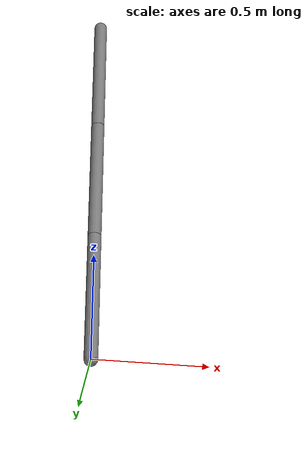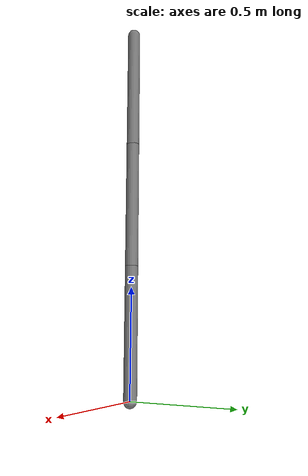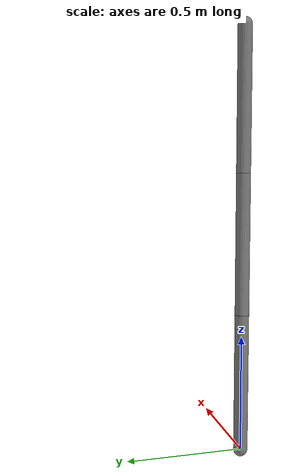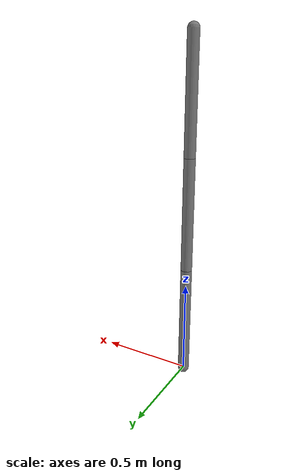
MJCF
<mujoco model="3dof_arm">

  <option timestep="0.01" gravity="0 0 -9.81"/>

  <default>
    <joint damping="1"/>
    <geom type="capsule" size="0.03 0.3" mass="1"/>
  </default>

  <worldbody>

    <!-- LINK 1 -->
    <body name="link1" pos="0 0 0">
      <joint name="joint1" type="hinge" axis="0 0 1"/>
      <geom fromto="0 0 0 0 0 0.6"/>

      <!-- LINK 2 -->
      <body name="link2" pos="0 0 0.6">
        <joint name="joint2" type="hinge" axis="0 1 0"/>
        <geom fromto="0 0 0 0 0 0.6"/>

        <!-- LINK 3 -->
        <body name="link3" pos="0 0 0.6">
          <joint name="joint3" type="hinge" axis="1 0 0"/>
          <geom fromto="0 0 0 0 0 0.6"/>
        </body>

      </body>
    </body>

  </worldbody>

  <actuator>
    <motor joint="joint1" ctrlrange="-200 200"/>
    <motor joint="joint2" ctrlrange="-200 200"/>
    <motor joint="joint3" ctrlrange="-200 200"/>
  </actuator>

</mujoco>
